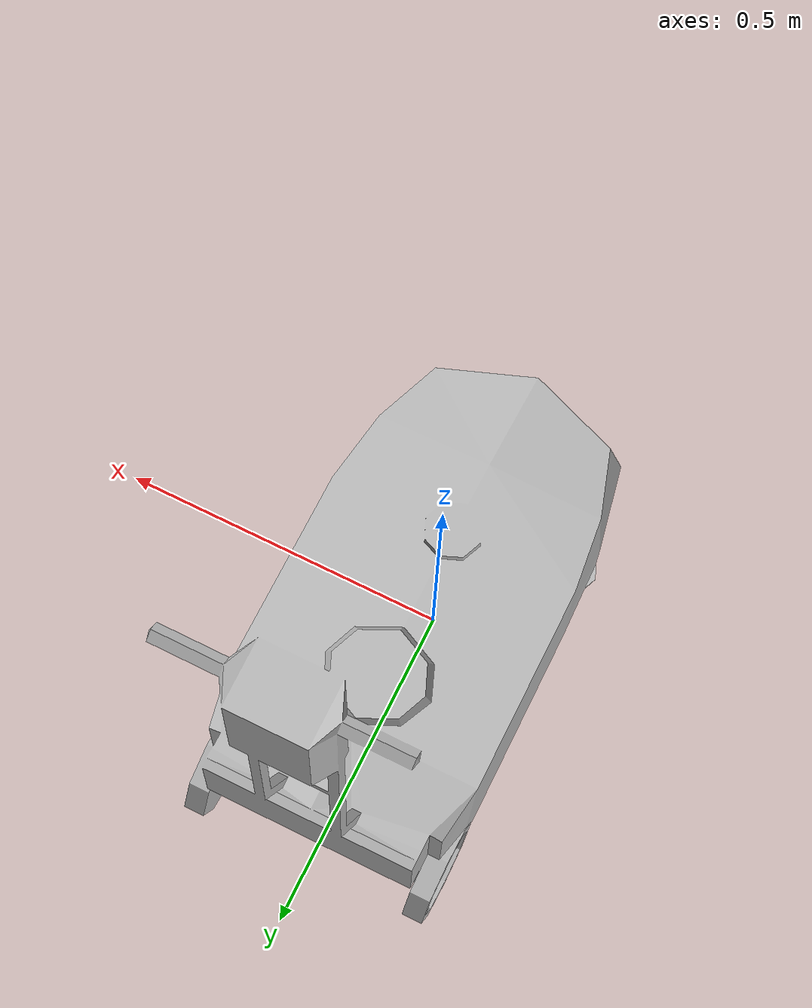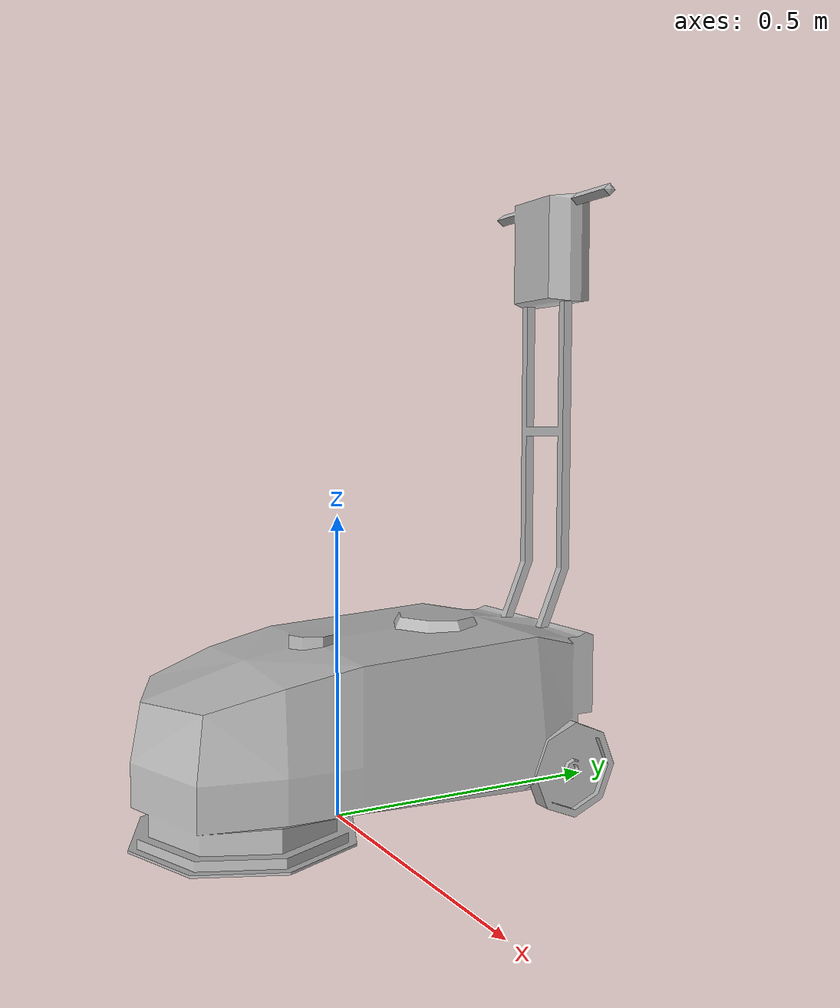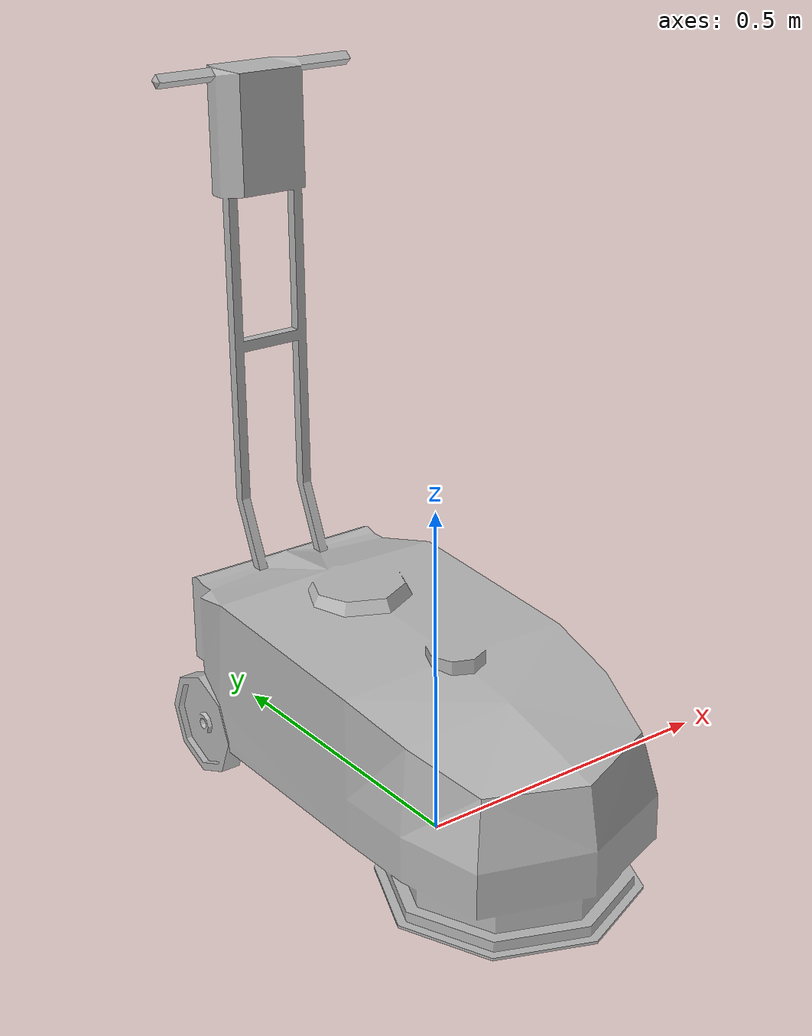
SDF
<?xml version='1.0' encoding='utf-8'?>
<sdf version="1.6">
    <model name="Scrubber">
        <static>true</static>
        <link name="body">
            <pose>0 0 0 0 0 0</pose>
            <visual name="visual">
                <geometry>
                    <mesh>
                        <uri>https://fuel.gazebosim.org/1.0/openrobotics/models/scrubber/2/files/meshes/Scrubber.obj</uri>
                    </mesh>
                </geometry>
            </visual>
            <collision name="collision">
                <geometry>
                    <mesh>
                        <uri>https://fuel.gazebosim.org/1.0/openrobotics/models/scrubber/2/files/meshes/Scrubber_Col.obj</uri>
                    </mesh>
                </geometry>
            </collision>
        </link>
    </model>
</sdf>
